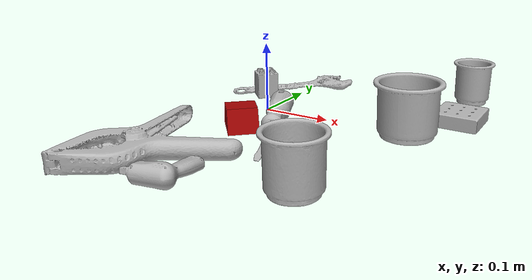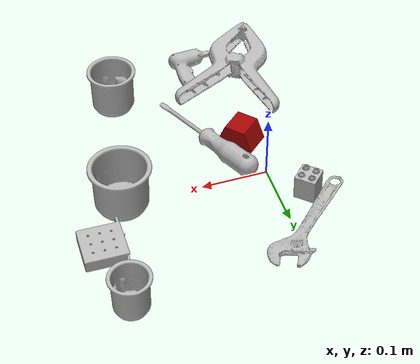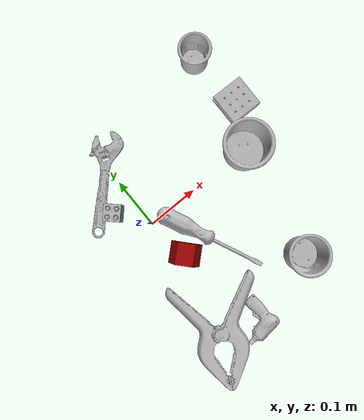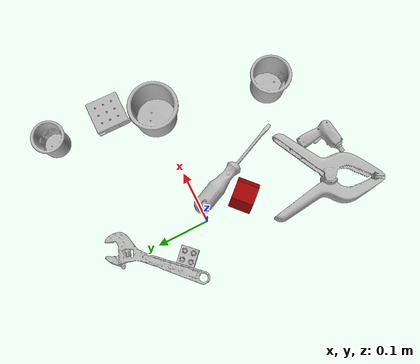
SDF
<sdf version="1.4">
  <world name="default">
    <light name="light1" type="point">
      <pose>0 0 1 0 0 0</pose>
      <diffuse>3 3 3 1</diffuse>
      <specular>3 3 3 1</specular>
    </light>
    <light name="light2" type="point">
      <pose>0 0.5 2 0 0 0</pose>
      <diffuse>1 1 1 1</diffuse>
      <specular>1 1 1 1</specular>
    </light>
    <light name="light3" type="point">
      <pose>0 0.5 2 0 0 0</pose>
      <diffuse>3 3 3 1</diffuse>
      <specular>3 3 3 1</specular>
    </light>
    <scene>
      <ambient>0.7 0.7 0.7</ambient>
    </scene>
    <model name="cup1">
      <link name="link_cup1">
        <collision name="default">
          <geometry>
            <mesh>
              <uri>model://b_cups/collision_meshes/collision.obj</uri>
              <scale>1.0 1.0 1.0</scale>
            </mesh>
          </geometry>
          <surface>
            <friction>
              <ode>
                <mu>0.5</mu>
                <mu2>0.5</mu2>
              </ode>
            </friction>
          <contact>
        <ode>
            <max_vel>0</max_vel>
            <min_depth>0.0001</min_depth>
            <kp>1e8</kp>
        </ode>
    </contact></surface>
        </collision>
        <visual name="default">
          <geometry>
            <mesh>
              <uri>model://b_cups/visual_meshes/visual.dae</uri>
              <scale>1.0 1.0 1.0</scale>
            </mesh>
          </geometry>
        </visual>
        <inertial>
          <mass>0.03190340846776962</mass>
          <pose>0.0005182004533708096 0.0018058607820421457 -0.0013381806202232838 0.11356328214070865 0.03872483993123738 -0.34569243052877063</pose>
          <inertia>
            <ixx>2.0883017e-05</ixx>
            <iyy>2.0486541e-05</iyy>
            <izz>1.7572664e-05</izz>
            <ixy>0</ixy>
            <ixz>0</ixz>
            <iyz>0</iyz>
          </inertia>
        </inertial>
      </link>
      <pose>0.25504595041275024 0.1881478875875473 0.031996097415685654 -0.007628471446242519 -0.0038359063748797714 -1.3670527539018738</pose>
    </model>
    <model name="cup2">
      <link name="link_cup2">
        <collision name="default">
          <geometry>
            <mesh>
              <uri>model://e_cups/collision_meshes/collision.obj</uri>
              <scale>1.0 1.0 1.0</scale>
            </mesh>
          </geometry>
          <surface>
            <friction>
              <ode>
                <mu>0.5</mu>
                <mu2>0.5</mu2>
              </ode>
            </friction>
          <contact>
        <ode>
            <max_vel>0</max_vel>
            <min_depth>0.0001</min_depth>
            <kp>1e8</kp>
        </ode>
    </contact></surface>
        </collision>
        <visual name="default">
          <geometry>
            <mesh>
              <uri>model://e_cups/visual_meshes/visual.dae</uri>
              <scale>1.0 1.0 1.0</scale>
            </mesh>
          </geometry>
        </visual>
        <inertial>
          <mass>0.09350046515464783</mass>
          <pose>0.0011355748865753412 0.0028797851409763098 -0.0038829720579087734 0.69524087765449 0.08767898447354379 -0.5235249697507389</pose>
          <inertia>
            <ixx>8.2444014e-05</ixx>
            <iyy>8.6165805e-05</iyy>
            <izz>7.882601e-05</izz>
            <ixy>0</ixy>
            <ixz>0</ixz>
            <iyz>0</iyz>
          </inertia>
        </inertial>
      </link>
      <pose>0.179135262966156 -0.2183254361152649 0.03560025990009308 -1.6656820902970597e-05 1.0740243851666926e-05 1.7358909448795288</pose>
    </model>
    <model name="cup3">
      <link name="link_cup3">
        <collision name="default">
          <geometry>
            <mesh>
              <uri>model://h_cups/collision_meshes/collision.obj</uri>
              <scale>1.0 1.0 1.0</scale>
            </mesh>
          </geometry>
          <surface>
            <friction>
              <ode>
                <mu>0.5</mu>
                <mu2>0.5</mu2>
              </ode>
            </friction>
          <contact>
        <ode>
            <max_vel>0</max_vel>
            <min_depth>0.0001</min_depth>
            <kp>1e8</kp>
        </ode>
    </contact></surface>
        </collision>
        <visual name="default">
          <geometry>
            <mesh>
              <uri>model://h_cups/visual_meshes/visual.dae</uri>
              <scale>1.0 1.0 1.0</scale>
            </mesh>
          </geometry>
        </visual>
        <inertial>
          <mass>0.05626832693815231</mass>
          <pose>-2.7024709197576158e-05 0.00023018589126877487 -0.0018405396258458495 -0.02436208446622447 0.06545190020339471 0.12885609358770897</pose>
          <inertia>
            <ixx>7.2667885e-05</ixx>
            <iyy>7.180077e-05</iyy>
            <izz>7.620872e-05</izz>
            <ixy>0</ixy>
            <ixz>0</ixz>
            <iyz>0</iyz>
          </inertia>
        </inertial>
      </link>
      <pose>0.22006580233573914 -0.002234770217910409 0.0377579927444458 -9.640453672854552e-08 -1.0193196807869837e-07 -2.222785732344026</pose>
    </model>
    <model name="toy1">
      <link name="link_toy1">
        <collision name="default">
          <geometry>
            <mesh>
              <uri>model://nine_hole_peg_test/collision_meshes/collision.obj</uri>
              <scale>0.5 0.5 0.5</scale>
            </mesh>
          </geometry>
          <surface>
            <friction>
              <ode>
                <mu>0.5</mu>
                <mu2>0.5</mu2>
              </ode>
            </friction>
          <contact>
        <ode>
            <max_vel>0</max_vel>
            <min_depth>0.0001</min_depth>
            <kp>1e8</kp>
        </ode>
    </contact></surface>
        </collision>
        <visual name="default">
          <geometry>
            <mesh>
              <uri>model://nine_hole_peg_test/visual_meshes/visual.dae</uri>
              <scale>0.5 0.5 0.5</scale>
            </mesh>
          </geometry>
        </visual>
        <inertial>
          <mass>0.06318242102861404</mass>
          <pose>-0.0023086941801011562 -0.004823808092623949 1.3230346667114645e-05 -0.0014666789322941463 0.0007194184826049595 -0.6342412444031488</pose>
          <inertia>
            <ixx>2.4699024e-05</ixx>
            <iyy>2.3061213e-05</iyy>
            <izz>4.327997e-05</izz>
            <ixy>0</ixy>
            <ixz>0</ixz>
            <iyz>0</iyz>
          </inertia>
        </inertial>
      </link>
      <pose>0.2647901177406311 0.07346003502607346 0.010385504923760891 7.84293749576059e-09 1.3297513749575983e-08 3.1349383197943665</pose>
    </model>
    <model name="toy2">
      <link name="link_toy2">
        <collision name="default">
          <geometry>
            <mesh>
              <uri>model://prism/collision_meshes/collision.obj</uri>
              <scale>0.5 0.5 0.5</scale>
            </mesh>
          </geometry>
          <surface>
            <friction>
              <ode>
                <mu>0.5</mu>
                <mu2>0.5</mu2>
              </ode>
            </friction>
          <contact>
        <ode>
            <max_vel>0</max_vel>
            <min_depth>0.0001</min_depth>
            <kp>1e8</kp>
        </ode>
    </contact></surface>
        </collision>
        <visual name="default">
          <geometry>
            <mesh>
              <uri>model://prism/visual_meshes/visual.dae</uri>
              <scale>0.5 0.5 0.5</scale>
            </mesh>
          </geometry>
        </visual>
        <inertial>
          <mass>0.058882199227809906</mass>
          <pose>-4.92679828312248e-05 -2.480786349678965e-07 -0.0016934550367295742 0.0 0.00655918030046738 0.0</pose>
          <inertia>
            <ixx>1.32851155e-05</ixx>
            <iyy>1.6055232e-05</iyy>
            <izz>1.9665738e-05</izz>
            <ixy>0</ixy>
            <ixz>0</ixz>
            <iyz>0</iyz>
          </inertia>
        </inertial>
      </link>
      <pose>0.012394869700074196 -0.08293656259775162 0.016085004433989525 8.349623428141094e-08 -4.608414855568727e-08 2.3093227725099</pose>
    </model>
    <model name="toy3">
      <link name="link_toy3">
        <collision name="default">
          <geometry>
            <mesh>
              <uri>model://b_toy_airplane/collision_meshes/collision.obj</uri>
              <scale>0.5 0.5 0.5</scale>
            </mesh>
          </geometry>
          <surface>
            <friction>
              <ode>
                <mu>0.5</mu>
                <mu2>0.5</mu2>
              </ode>
            </friction>
          <contact>
        <ode>
            <max_vel>0</max_vel>
            <min_depth>0.0001</min_depth>
            <kp>1e8</kp>
        </ode>
    </contact></surface>
        </collision>
        <visual name="default">
          <geometry>
            <mesh>
              <uri>model://b_toy_airplane/visual_meshes/visual.dae</uri>
              <scale>0.5 0.5 0.5</scale>
            </mesh>
          </geometry>
        </visual>
        <inertial>
          <mass>0.06070837751030922</mass>
          <pose>0.002540682442486286 0.0020077924709767103 0.0047715334221720695 -0.040018114249042835 -0.04022179473329346 -0.5601502235260123</pose>
          <inertia>
            <ixx>2.8176557e-05</ixx>
            <iyy>1.1262445e-05</iyy>
            <izz>3.5054447e-05</izz>
            <ixy>0</ixy>
            <ixz>0</ixz>
            <iyz>0</iyz>
          </inertia>
        </inertial>
      </link>
      <pose>0.047475818544626236 -0.2653920650482178 0.008455879986286163 0.17942906227734773 0.06131572726567621 -3.0077181076722175</pose>
    </model>
    <model name="toy4">
      <link name="link_toy4">
        <collision name="default">
          <geometry>
            <mesh>
              <uri>model://f_lego_duplo/collision_meshes/collision.obj</uri>
              <scale>1.0 1.0 1.0</scale>
            </mesh>
          </geometry>
          <surface>
            <friction>
              <ode>
                <mu>0.5</mu>
                <mu2>0.5</mu2>
              </ode>
            </friction>
          <contact>
        <ode>
            <max_vel>0</max_vel>
            <min_depth>0.0001</min_depth>
            <kp>1e8</kp>
        </ode>
    </contact></surface>
        </collision>
        <visual name="default">
          <geometry>
            <mesh>
              <uri>model://f_lego_duplo/visual_meshes/visual.dae</uri>
              <scale>1.0 1.0 1.0</scale>
            </mesh>
          </geometry>
        </visual>
        <inertial>
          <mass>0.029542475938796997</mass>
          <pose>2.369392677792348e-05 0.00013393184053711593 0.0018837879179045558 0.029838766168002753 -0.014424835911361083 -0.6756712748416152</pose>
          <inertia>
            <ixx>6.2424897e-06</ixx>
            <iyy>6.2981026e-06</iyy>
            <izz>5.4187462e-06</izz>
            <ixy>0</ixy>
            <ixz>0</ixz>
            <iyz>0</iyz>
          </inertia>
        </inertial>
      </link>
      <pose>-0.04221683368086815 0.05930868163704872 0.02187090739607811 7.09267579495856e-06 1.4414784238121325e-05 2.379591573645649</pose>
    </model>
    <model name="hardware1">
      <link name="link_hardware1">
        <collision name="default">
          <geometry>
            <mesh>
              <uri>model://extra_large_clamp/collision_meshes/collision.obj</uri>
              <scale>1.0 1.0 1.0</scale>
            </mesh>
          </geometry>
          <surface>
            <friction>
              <ode>
                <mu>0.5</mu>
                <mu2>0.5</mu2>
              </ode>
            </friction>
          <contact>
        <ode>
            <max_vel>0</max_vel>
            <min_depth>0.0001</min_depth>
            <kp>1e8</kp>
        </ode>
    </contact></surface>
        </collision>
        <visual name="default">
          <geometry>
            <mesh>
              <uri>model://extra_large_clamp/visual_meshes/visual.dae</uri>
              <scale>1.0 1.0 1.0</scale>
            </mesh>
          </geometry>
        </visual>
        <inertial>
          <mass>0.20469266176223755</mass>
          <pose>0.00323202065192163 -7.615445792907849e-05 0.0003172155993524939 0.013786991356050505 -0.0005066836095273004 -0.000893628832478523</pose>
          <inertia>
            <ixx>0.00031109934</ixx>
            <iyy>0.0005356169</iyy>
            <izz>0.00081831246</izz>
            <ixy>0</ixy>
            <ixz>0</ixz>
            <iyz>0</iyz>
          </inertia>
        </inertial>
      </link>
      <pose>-0.028366927057504654 -0.23424670100212097 0.018068011850118637 -0.02437842464684463 0.00012974683124981426 -2.0466304662455514</pose>
    </model>
    <model name="hardware2">
      <link name="link_hardware2">
        <collision name="default">
          <geometry>
            <mesh>
              <uri>model://flat_screwdriver/collision_meshes/collision.obj</uri>
              <scale>1.0 1.0 1.0</scale>
            </mesh>
          </geometry>
          <surface>
            <friction>
              <ode>
                <mu>0.5</mu>
                <mu2>0.5</mu2>
              </ode>
            </friction>
          <contact>
        <ode>
            <max_vel>0</max_vel>
            <min_depth>0.0001</min_depth>
            <kp>1e8</kp>
        </ode>
    </contact></surface>
        </collision>
        <visual name="default">
          <geometry>
            <mesh>
              <uri>model://flat_screwdriver/visual_meshes/visual.dae</uri>
              <scale>1.0 1.0 1.0</scale>
            </mesh>
          </geometry>
        </visual>
        <inertial>
          <mass>0.09510745853185654</mass>
          <pose>-0.048918697983026505 -0.0006576799787580967 -0.000614091579336673 -0.5614762322958965 -0.003233723970645699 0.006982278511552064</pose>
          <inertia>
            <ixx>1.1236876e-05</ixx>
            <iyy>0.00014265477</iyy>
            <izz>0.00014258873</izz>
            <ixy>0</ixy>
            <ixz>0</ixz>
            <iyz>0</iyz>
          </inertia>
        </inertial>
      </link>
      <pose>0.06600017845630646 -0.08759598433971405 0.015338617376983166 -0.21442618983557743 0.04069506053747047 -1.1580385250416247</pose>
    </model>
    <model name="hardware3">
      <link name="link_hardware3">
        <collision name="default">
          <geometry>
            <mesh>
              <uri>model://adjustable_wrench/collision_meshes/collision.obj</uri>
              <scale>1.0 1.0 1.0</scale>
            </mesh>
          </geometry>
          <surface>
            <friction>
              <ode>
                <mu>0.5</mu>
                <mu2>0.5</mu2>
              </ode>
            </friction>
          <contact>
        <ode>
            <max_vel>0</max_vel>
            <min_depth>0.0001</min_depth>
            <kp>1e8</kp>
        </ode>
    </contact></surface>
        </collision>
        <visual name="default">
          <geometry>
            <mesh>
              <uri>model://adjustable_wrench/visual_meshes/visual.dae</uri>
              <scale>1.0 1.0 1.0</scale>
            </mesh>
          </geometry>
        </visual>
        <inertial>
          <mass>0.02741360291838646</mass>
          <pose>0.03740980476140976 -0.002896887017413974 -0.0011149230413138866 -0.0144733350781748 0.006656025939833136 -0.010954202845362587</pose>
          <inertia>
            <ixx>5.610589e-06</ixx>
            <iyy>6.5665416e-05</iyy>
            <izz>7.0977985e-05</izz>
            <ixy>0</ixy>
            <ixz>0</ixz>
            <iyz>0</iyz>
          </inertia>
        </inertial>
      </link>
      <pose>-0.02406126819550991 0.1198078915476799 0.006125042214989662 0.046759184769767544 -0.029270583904959784 0.7693233746227915</pose>
    </model>
  <physics type="ode">
      <max_contacts>50</max_contacts>
      <ode>
        <solver>
          <type>quick</type>
          <iters>75</iters>
        </solver>
        <constraints>
          <contact_max_correcting_vel>0</contact_max_correcting_vel>
          <contact_surface_layer>0</contact_surface_layer>
        </constraints>
      </ode>
    </physics></world>
</sdf>
